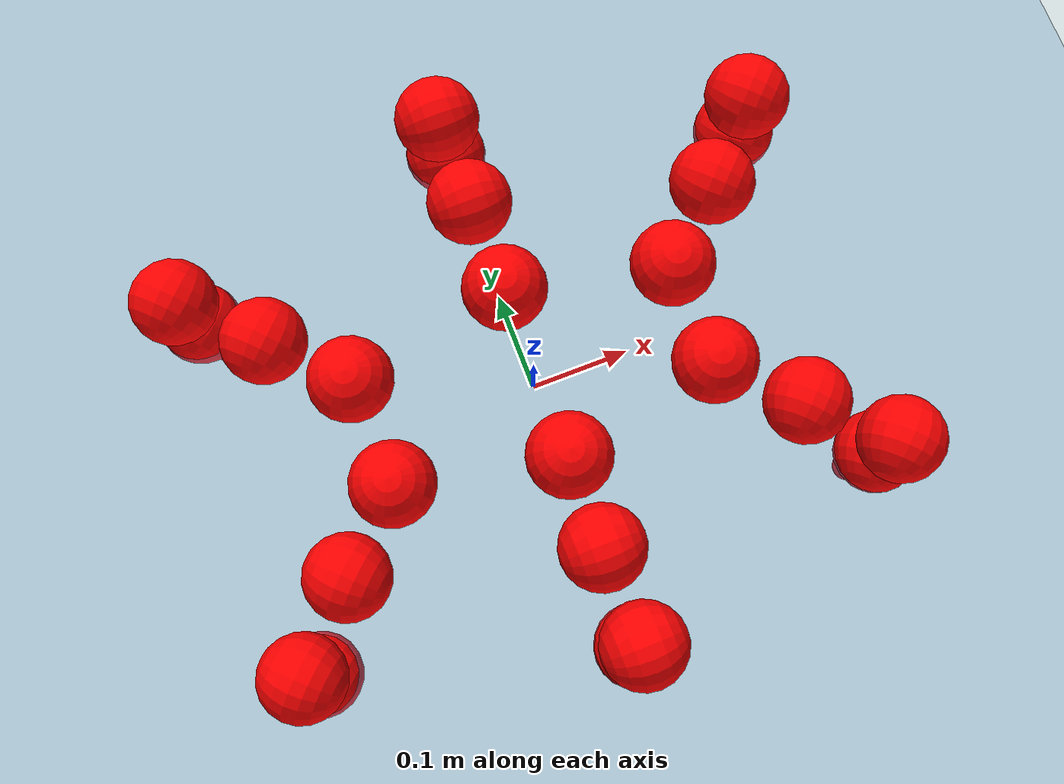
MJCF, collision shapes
<mujoco model="Golem">
  <compiler angle="radian" assetdir="assets" balanceinertia="true" inertiafromgeom="false"/>

  <option timestep="0.005" density="1.2" viscosity="2e-05"/>

  <size nkey="1"/>

  <visual>
    <quality shadowsize="8192"/>
    <map shadowclip="0.5"/>
  </visual>

  <default>
    <default class="/">
      <joint armature="0.01" damping="0.01" frictionloss="0.01"/>
      <geom contype="0" conaffinity="0" group="1" solref="-1000 -80"/>
      <site size="0.01 0.005 0.005" group="5"/>
      <general forcelimited="true" biastype="affine" gainprm="25" biasprm="0 -25 -0.5"/>
      <default class="visual">
        <geom type="mesh" group="2"/>
      </default>
      <default class="collision">
        <geom group="3"/>
      </default>
      <default class="foot">
        <geom size="0.01 0 0" condim="6" group="4" priority="1" solimp="0.015 1 0.01"/>
      </default>
      <default class="reward_collision_sphere">
        <geom group="5" rgba="1 0 0 1"/>
      </default>
    </default>
  </default>

  <asset>
    <texture type="skybox" colorspace="auto" name="//unnamed_texture_0" builtin="gradient" rgb1="0.95 0.95 0.95" rgb2="0.95 0.95 0.95" width="100" height="600"/>
    <texture type="2d" colorspace="auto" name="texplane" builtin="checker" rgb1="0.345 0.575 0.748" rgb2="0.345 0.575 0.748" markrgb="1 1 1" width="512" height="512"/>
    <material name="MatPlane" class="/" texture="texplane" texuniform="true" texrepeat="2 2" specular="0.9"/>
    <mesh name="body" class="/" file="body.stl" scale="0.001 0.001 0.001"/>
    <mesh name="coxa" class="/" file="coxa.stl" scale="0.001 0.001 0.001"/>
    <mesh name="femur" class="/" file="femur.stl" scale="0.001 0.001 0.001"/>
    <mesh name="tibia" class="/" file="tibia.stl" scale="0.001 0.001 0.001"/>
    <mesh name="tarsus" class="/" file="tarsus.stl" scale="0.001 0.001 0.001"/>
  </asset>

  <worldbody>
    <geom name="floor" class="/" size="100 100 0.125" type="plane" group="0" material="MatPlane"/>
    <light name="toplight_shadow" class="/" pos="0 0 5" dir="0.0990148 0.0990148 -0.990148" type="directional" ambient="0.04 0.04 0.04" diffuse="0.55 0.55 0.55" specular="0.12 0.12 0.12"/>
    <light name="toplight_fill" class="/" pos="0 0 5" dir="0.0990148 0.0990148 -0.990148" type="directional" castshadow="false" ambient="0.04 0.04 0.04" diffuse="0.3 0.3 0.3" specular="0.08 0.08 0.08"/>
    <body name="trunk" pos="-0.000289784 -0.000909522 0.000130708" quat="0.999999 0.000546799 7.65414e-05 -0.00105746">
      <inertial pos="-0.00175764 -0.00351538 -0.0039823" quat="0.999964 0.00332868 -0.00592355 0.00498842" mass="4.3621" diaginertia="0.0124075 0.005421 0.0295104"/>
      <joint name="//unnamed_joint_0" type="free"/>
      <geom name="//unnamed_geom_1" class="/" pos="0 0 0.0787032" quat="1 0 0 0" type="mesh" rgba="0.9 0.9 0.9 1" mesh="body"/>
      <site name="imu" class="/" pos="0.138455 -0.00400822 0.112942" size="0.0104788"/>
      <camera name="track" class="/" pos="0 -1.76208 0" quat="0.707107 0.707107 0 0" mode="trackcom"/>
      <camera name="ego_camera" class="/" pos="0.134273 0 0.122974" quat="-0.5 -0.5 0.5 0.5"/>
      <body name="coxa_RR" pos="-0.182918 -0.074354 0.0792975" quat="0.382683 -9.28834e-05 0.000601878 -0.923879">
        <inertial pos="0.00109955 0.00234956 0.0023603" quat="0.999839 -0.0171101 0.00409626 0.00343562" mass="0.21679" diaginertia="0.0115059 0.00536269 0.0265801"/>
        <joint name="coxa_joint_RR" class="/" pos="0 0 0" axis="-0.00614078 -0.00408383 -0.999973" stiffness="0.000959265" range="-3.14533 3.20834" armature="0.00881507" damping="0" frictionloss="0.0107606"/>
        <geom name="//unnamed_geom_2" class="/" type="mesh" rgba="0.2 0.2 0.2 1" mesh="coxa"/>
        <geom name="//unnamed_geom_3" class="reward_collision_sphere" size="0.0419152" pos="-0.030986 0 0"/>
        <body name="femur_RR" pos="0.0632651 -0.00113247 -0.000253345" quat="0.499334 -0.500002 0.500265 0.500398">
          <inertial pos="-0.00184466 0.00228454 0.000883111" quat="0.99997 0.00265825 0.00420147 -0.00590669" mass="0.222316" diaginertia="0.0114543 0.00515642 0.0281739"/>
          <joint name="femur_joint_RR" class="/" pos="0 0 0" axis="0.005432 0.00374967 -0.999978" range="-3.10833 3.1152" armature="0.0105019" damping="0.0369467" frictionloss="0.0117477"/>
          <geom name="//unnamed_geom_4" class="/" type="mesh" rgba="0.9 0.9 0.9 1" mesh="femur"/>
          <geom name="//unnamed_geom_5" class="reward_collision_sphere" size="0.0419152"/>
          <body name="tibia_RR" pos="0.00168195 -0.0975746 0.00179039" quat="0.00040438 1 -0.00037528 0.000769849">
            <inertial pos="-0.000152662 0.00162437 0.000251821" quat="0.99993 -0.0102403 0.00549622 -0.00235414" mass="0.217472" diaginertia="0.0119812 0.00520376 0.0277755"/>
            <joint name="tibia_joint_RR" class="/" pos="0 0 0" axis="0.00226604 -0.00170192 0.999996" range="-3.18918 3.15342" armature="0.0105677" damping="0.0119057" frictionloss="0.0100944"/>
            <geom name="//unnamed_geom_6" class="/" type="mesh" rgba="0.2 0.2 0.2 1" mesh="tibia"/>
            <geom name="//unnamed_geom_7" class="reward_collision_sphere" size="0.0419152"/>
            <body name="tarsus_RR" pos="0.0926044 -0.0001172 -0.00074944" quat="1 -0.000500999 0.000373613 7.79675e-05">
              <inertial pos="0.063701 -0.000446551 -0.00240896" quat="0.502965 0.49661 0.500777 0.499626" mass="0.223868" diaginertia="0.0111349 0.00514222 0.0274103"/>
              <joint name="tarsus_joint_RR" class="/" pos="0 0 0" axis="-0.0170003 0.0118008 0.999786" range="-3.15045 3.14371" armature="0.011261" damping="0.0498038" frictionloss="0.0106615"/>
              <geom name="//unnamed_geom_8" class="/" type="mesh" rgba="0.9 0.9 0.9 1" mesh="tarsus"/>
              <geom name="foot_1" class="foot" size="0.00930788" pos="0.115681 0 0" quat="0 -0.707107 0 0.707107"/>
              <geom name="//unnamed_geom_10" class="reward_collision_sphere" size="0.0419152"/>
              <geom name="//unnamed_geom_11" class="reward_collision_sphere" size="0.0157182" pos="0.111033 0 0"/>
              <site name="foot_1" class="foot" pos="0.115681 0 0" quat="0 -0.707107 0 0.707107" size="0.0104788"/>
            </body>
          </body>
        </body>
      </body>
      <body name="coxa_RM" pos="0.00177012 -0.11798 0.0845046" quat="0.707733 0.000671191 0.000108721 -0.70648">
        <inertial pos="0.00160321 0.000238121 -0.00215403" quat="0.999994 -0.00176489 -0.0017182 -0.00256725" mass="0.223444" diaginertia="0.0111603 0.00531313 0.0272802"/>
        <joint name="coxa_joint_RM" class="/" pos="0 0 0" axis="-0.000704394 0.000566011 -1" stiffness="0.00540834" range="-3.14398 3.15466" armature="0.0106989" damping="0.0206167" frictionloss="0.0108995"/>
        <geom name="//unnamed_geom_12" class="/" type="mesh" rgba="0.2 0.2 0.2 1" mesh="coxa"/>
        <geom name="//unnamed_geom_13" class="reward_collision_sphere" size="0.0419152" pos="-0.030986 0 0"/>
        <body name="femur_RM" pos="0.0591838 -0.00306876 -0.00143984" quat="0.500261 -0.500559 0.499627 0.499552">
          <inertial pos="0.00108403 -0.00178004 0.00249066" quat="0.999893 -0.00430093 -0.0121354 -0.00697771" mass="0.246973" diaginertia="0.0119425 0.00553514 0.0284367"/>
          <joint name="femur_joint_RM" class="/" pos="0 0 0" axis="-0.00166936 -0.00175299 -0.999997" range="-3.0758 3.08582" armature="0.0106616" damping="0.027226" frictionloss="0.0105674"/>
          <geom name="//unnamed_geom_14" class="/" type="mesh" rgba="0.9 0.9 0.9 1" mesh="femur"/>
          <geom name="//unnamed_geom_15" class="reward_collision_sphere" size="0.0419152"/>
          <body name="tibia_RM" pos="0.00138595 -0.0952193 0.00232291" quat="0.000884382 0.999999 -0.000214743 -0.00143809">
            <inertial pos="-0.000618715 0.000970664 -0.00260595" quat="1 3.14096e-05 6.34701e-05 9.09188e-05" mass="0.232107" diaginertia="0.0116474 0.00533871 0.0288742"/>
            <joint name="tibia_joint_RM" class="/" pos="0 0 0" axis="-0.0125044 0.000515381 0.999922" stiffness="0.0139385" range="-3.13848 3.14371" armature="0.00953737" damping="0.00757083" frictionloss="0.00908985"/>
            <geom name="//unnamed_geom_16" class="/" type="mesh" rgba="0.2 0.2 0.2 1" mesh="tibia"/>
            <geom name="//unnamed_geom_17" class="reward_collision_sphere" size="0.0419152"/>
            <body name="tarsus_RM" pos="0.0892025 0.00123449 0.000194355" quat="1 0.0004708 0.000348401 0.000609335">
              <inertial pos="0.0629254 0.000971716 0.000349425" quat="0.510756 0.498323 0.492811 0.497936" mass="0.23151" diaginertia="0.0117345 0.00534376 0.0294513"/>
              <joint name="tarsus_joint_RM" class="/" pos="0 0 0" axis="0.00409773 -0.00075316 0.999991" stiffness="0.00497674" range="-3.1512 3.07261" armature="0.00960497" damping="0.0103142" frictionloss="0.0122196"/>
              <geom name="//unnamed_geom_18" class="/" type="mesh" rgba="0.9 0.9 0.9 1" mesh="tarsus"/>
              <geom name="foot_2" class="foot" size="0.0116172" pos="0.115681 0 0" quat="0 -0.707107 0 0.707107"/>
              <geom name="//unnamed_geom_20" class="reward_collision_sphere" size="0.0419152"/>
              <geom name="//unnamed_geom_21" class="reward_collision_sphere" size="0.0157182" pos="0.111033 0 0"/>
              <site name="foot_2" class="foot" pos="0.115681 0 0" quat="0 -0.707107 0 0.707107" size="0.0104788"/>
            </body>
          </body>
        </body>
      </body>
      <body name="coxa_RF" pos="0.185509 -0.0739911 0.0811392" quat="0.924038 0.000663109 -0.000252731 -0.382299">
        <inertial pos="-0.00187341 -0.00213782 0.000152155" quat="0.999998 0.000666007 0.00190571 0.000538187" mass="0.234613" diaginertia="0.0113137 0.00520208 0.0276868"/>
        <joint name="coxa_joint_RF" class="/" pos="0 0 0" axis="-0.00117705 -0.013931 -0.999902" stiffness="0.0230812" range="-3.09538 3.18218" armature="0.00902975" damping="0.00865533" frictionloss="0.0112989"/>
        <geom name="//unnamed_geom_22" class="/" type="mesh" rgba="0.2 0.2 0.2 1" mesh="coxa"/>
        <geom name="//unnamed_geom_23" class="reward_collision_sphere" size="0.0419152" pos="-0.030986 0 0"/>
        <body name="femur_RF" pos="0.0623781 -0.00099173 0.00047628" quat="0.500322 -0.500154 0.50013 0.499394">
          <inertial pos="0.000483069 -0.00155964 -0.00285578" quat="0.999988 0.00456272 -0.000711877 -0.0014416" mass="0.241028" diaginertia="0.0121386 0.00546974 0.0298585"/>
          <joint name="femur_joint_RF" class="/" pos="0 0 0" axis="-0.0159336 0.000773264 -0.999873" range="-3.16101 3.10593" armature="0.0086189" damping="0.0119771" frictionloss="0.0104693"/>
          <geom name="//unnamed_geom_24" class="/" type="mesh" rgba="0.9 0.9 0.9 1" mesh="femur"/>
          <geom name="//unnamed_geom_25" class="reward_collision_sphere" size="0.0419152"/>
          <body name="tibia_RF" pos="-0.00378416 -0.0931469 0.000643945" quat="0.00050314 1 0.000482859 0.000450992">
            <inertial pos="0.00154094 -0.000245853 0.000774319" quat="0.999999 0.0011669 -0.000217478 -0.000494443" mass="0.224029" diaginertia="0.0120875 0.00527123 0.0269528"/>
            <joint name="tibia_joint_RF" class="/" pos="0 0 0" axis="0.00458153 0.00262003 0.999986" range="-3.14738 3.09571" armature="0.0113716" damping="0.00105214" frictionloss="0.0118593"/>
            <geom name="//unnamed_geom_26" class="/" type="mesh" rgba="0.2 0.2 0.2 1" mesh="tibia"/>
            <geom name="//unnamed_geom_27" class="reward_collision_sphere" size="0.0419152"/>
            <body name="tarsus_RF" pos="0.0876171 -0.00068382 -0.000721332" quat="0.999999 0.00100429 7.71736e-05 -0.00117259">
              <inertial pos="0.0600211 0.000264817 0.000817714" quat="0.497579 0.501323 0.503354 0.49772" mass="0.227074" diaginertia="0.0114463 0.00520564 0.028175"/>
              <joint name="tarsus_joint_RF" class="/" pos="0 0 0" axis="0.0133411 -0.00092875 0.999911" range="-3.14595 3.13098" armature="0.0105362" damping="0.0101858" frictionloss="0.0111287"/>
              <geom name="//unnamed_geom_28" class="/" type="mesh" rgba="0.9 0.9 0.9 1" mesh="tarsus"/>
              <geom name="foot_3" class="foot" size="0.00989377" pos="0.115681 0 0" quat="0 -0.707107 0 0.707107"/>
              <geom name="//unnamed_geom_30" class="reward_collision_sphere" size="0.0419152"/>
              <geom name="//unnamed_geom_31" class="reward_collision_sphere" size="0.0157182" pos="0.111033 0 0"/>
              <site name="foot_3" class="foot" pos="0.115681 0 0" quat="0 -0.707107 0 0.707107" size="0.0104788"/>
            </body>
          </body>
        </body>
      </body>
      <body name="coxa_LR" pos="-0.186651 0.0771836 0.0783737" quat="0.38273 -0.000417616 -0.00059908 0.92386">
        <inertial pos="0.000293456 5.2535e-05 0.00306287" quat="0.999995 -0.00109403 0.00299806 -0.000606158" mass="0.222368" diaginertia="0.0118258 0.00538849 0.0290482"/>
        <joint name="coxa_joint_LR" class="/" pos="0 0 0" axis="-0.00267073 -0.00507603 -0.999984" range="-3.15261 3.13937" armature="0.00936797" damping="0.00975118" frictionloss="0.0100325"/>
        <geom name="//unnamed_geom_32" class="/" type="mesh" rgba="0.2 0.2 0.2 1" mesh="coxa"/>
        <geom name="//unnamed_geom_33" class="reward_collision_sphere" size="0.0419152" pos="-0.030986 0 0"/>
        <body name="femur_LR" pos="0.0599527 3.79749e-05 0.00251149" quat="0.499858 -0.500393 0.500806 0.498942">
          <inertial pos="-0.000674207 -0.00173812 0.0018881" quat="0.999927 -0.00502431 -0.0099873 0.0046098" mass="0.238244" diaginertia="0.0120709 0.00520973 0.0286449"/>
          <joint name="femur_joint_LR" class="/" pos="0 0 0" axis="-0.0011791 0.014371 0.999896" stiffness="0.00298451" range="-3.10724 3.10915" armature="0.0107618" damping="0.0165631" frictionloss="0.00906744"/>
          <geom name="//unnamed_geom_34" class="/" type="mesh" rgba="0.9 0.9 0.9 1" mesh="femur"/>
          <geom name="//unnamed_geom_35" class="reward_collision_sphere" size="0.0419152"/>
          <body name="tibia_LR" pos="0.00135324 -0.0956773 0.000728919" quat="-0.00121298 0.999999 -0.000410632 -0.000282203">
            <inertial pos="0.00325795 -0.00254843 0.00208782" quat="0.999955 0.00892255 0.00278734 0.00138442" mass="0.230246" diaginertia="0.0113577 0.00511126 0.0271631"/>
            <joint name="tibia_joint_LR" class="/" pos="0 0 0" axis="0.000429013 0.00167271 -0.999999" stiffness="0.000537132" range="-3.18024 3.13499" armature="0.00941911" damping="0.0143572" frictionloss="0.00912752"/>
            <geom name="//unnamed_geom_36" class="/" type="mesh" rgba="0.2 0.2 0.2 1" mesh="tibia"/>
            <geom name="//unnamed_geom_37" class="reward_collision_sphere" size="0.0419152"/>
            <body name="tarsus_LR" pos="0.0908224 -0.000936282 0.00268549" quat="1 -0.000136289 -0.000256449 -0.000398032">
              <inertial pos="0.0639996 -0.000990326 0.00270452" quat="0.499678 0.499826 0.500309 0.500187" mass="0.219651" diaginertia="0.0113016 0.00526027 0.0276193"/>
              <joint name="tarsus_joint_LR" class="/" pos="0 0 0" axis="0.00413173 0.00993803 -0.999942" stiffness="0.00537404" range="-3.18108 3.14306" armature="0.00923379" damping="0.0237888" frictionloss="0.010443"/>
              <geom name="//unnamed_geom_38" class="/" type="mesh" rgba="0.9 0.9 0.9 1" mesh="tarsus"/>
              <geom name="foot_4" class="foot" size="0.011624" pos="0.115681 0 0" quat="0.707107 0 -0.707107 0"/>
              <geom name="//unnamed_geom_40" class="reward_collision_sphere" size="0.0419152"/>
              <geom name="//unnamed_geom_41" class="reward_collision_sphere" size="0.0157182" pos="0.111033 0 0"/>
              <site name="foot_4" class="foot" pos="0.115681 0 0" quat="0.707107 0 -0.707107 0" size="0.0104788"/>
            </body>
          </body>
        </body>
      </body>
      <body name="coxa_LM" pos="0.00286704 0.117106 0.0811333" quat="0.707295 0.000844638 0.000902827 0.706918">
        <inertial pos="-0.00187376 -0.00297963 0.00289425" quat="0.999999 -0.000614605 -0.000525078 0.000772345" mass="0.22958" diaginertia="0.0121558 0.00532473 0.0281053"/>
        <joint name="coxa_joint_LM" class="/" pos="0 0 0" axis="-0.012044 -0.00918456 -0.999885" stiffness="0.00135126" range="-3.11508 3.11374" armature="0.0100096" damping="0.0274394" frictionloss="0.0112005"/>
        <geom name="//unnamed_geom_42" class="/" type="mesh" rgba="0.2 0.2 0.2 1" mesh="coxa"/>
        <geom name="//unnamed_geom_43" class="reward_collision_sphere" size="0.0419152" pos="-0.030986 0 0"/>
        <body name="femur_LM" pos="0.0628327 0.000962219 -0.00161772" quat="0.499822 -0.500984 0.500008 0.499184">
          <inertial pos="-0.000740783 0.001254 -0.00239403" quat="1 0.000571654 0.000586972 -0.000287151" mass="0.237124" diaginertia="0.0121283 0.00543662 0.0300121"/>
          <joint name="femur_joint_LM" class="/" pos="0 0 0" axis="0.00665397 -0.0130415 0.999893" stiffness="0.00136726" range="-3.09001 3.13472" armature="0.0120879" damping="0.0104881" frictionloss="0.0108203"/>
          <geom name="//unnamed_geom_44" class="/" type="mesh" rgba="0.9 0.9 0.9 1" mesh="femur"/>
          <geom name="//unnamed_geom_45" class="reward_collision_sphere" size="0.0419152"/>
          <body name="tibia_LM" pos="-0.00130837 -0.0913358 -7.05059e-05" quat="0.000112149 1 -0.000157586 -6.98134e-05">
            <inertial pos="0.00275808 -0.00130758 0.00205907" quat="0.999914 -0.0062544 0.00124661 0.0114957" mass="0.236748" diaginertia="0.0117266 0.0051804 0.026799"/>
            <joint name="tibia_joint_LM" class="/" pos="0 0 0" axis="0.00552036 -0.00353424 -0.999979" range="-3.19105 3.14299" armature="0.0104471" damping="0.0129163" frictionloss="0.00983835"/>
            <geom name="//unnamed_geom_46" class="/" type="mesh" rgba="0.2 0.2 0.2 1" mesh="tibia"/>
            <geom name="//unnamed_geom_47" class="reward_collision_sphere" size="0.0419152"/>
            <body name="tarsus_LM" pos="0.0908158 -0.000286145 0.00258567" quat="1 -4.93065e-05 -3.22391e-06 -0.000299894">
              <inertial pos="0.0587346 -0.000269122 -0.00047538" quat="0.497465 0.502941 0.494373 0.505148" mass="0.217332" diaginertia="0.011844 0.00530002 0.0280293"/>
              <joint name="tarsus_joint_LM" class="/" pos="0 0 0" axis="0.00882567 -0.00716897 -0.999935" range="-3.14668 3.12638" armature="0.0108408" damping="0" frictionloss="0.0104861"/>
              <geom name="//unnamed_geom_48" class="/" type="mesh" rgba="0.9 0.9 0.9 1" mesh="tarsus"/>
              <geom name="foot_5" class="foot" size="0.0116545" pos="0.115681 0 0" quat="0.707107 0 -0.707107 0"/>
              <geom name="//unnamed_geom_50" class="reward_collision_sphere" size="0.0419152"/>
              <geom name="//unnamed_geom_51" class="reward_collision_sphere" size="0.0157182" pos="0.111033 0 0"/>
              <site name="foot_5" class="foot" pos="0.115681 0 0" quat="0.707107 0 -0.707107 0" size="0.0104788"/>
            </body>
          </body>
        </body>
      </body>
      <body name="coxa_LF" pos="0.184886 0.0730239 0.0793003" quat="0.923841 -0.000310063 4.02779e-05 0.382777">
        <inertial pos="-0.000372985 0.00271473 0.000501654" quat="1 3.40927e-05 -0.000230423 -9.48766e-05" mass="0.22831" diaginertia="0.0114705 0.00516559 0.0275794"/>
        <joint name="coxa_joint_LF" class="/" pos="0 0 0" axis="0.00435285 -0.0122679 -0.999915" range="-3.12046 3.09441" armature="0.0117375" damping="0.00883245" frictionloss="0.0102409"/>
        <geom name="//unnamed_geom_52" class="/" type="mesh" rgba="0.2 0.2 0.2 1" mesh="coxa"/>
        <geom name="//unnamed_geom_53" class="reward_collision_sphere" size="0.0419152" pos="-0.030986 0 0"/>
        <body name="femur_LF" pos="0.0599944 -0.00319999 0.00338368" quat="0.499876 -0.498999 0.499974 0.501149">
          <inertial pos="0.000979131 0.00203083 -0.00272764" quat="0.999998 0.0018767 0.000744606 -1.2331e-05" mass="0.226421" diaginertia="0.01144 0.00521504 0.0284381"/>
          <joint name="femur_joint_LF" class="/" pos="0 0 0" axis="-0.00228275 0.00261557 0.999994" stiffness="0.00293309" range="-3.13426 3.17275" armature="0.0107347" damping="0.00953413" frictionloss="0.0117879"/>
          <geom name="//unnamed_geom_54" class="/" type="mesh" rgba="0.9 0.9 0.9 1" mesh="femur"/>
          <geom name="//unnamed_geom_55" class="reward_collision_sphere" size="0.0419152"/>
          <body name="tibia_LF" pos="0.00221777 -0.0971849 0.00237486" quat="-0.00018755 0.999999 -0.000656397 -0.00110733">
            <inertial pos="0.00271671 0.00217237 0.00200496" quat="0.999959 0.00593246 0.00618826 0.00278932" mass="0.233794" diaginertia="0.0117842 0.00542619 0.0293222"/>
            <joint name="tibia_joint_LF" class="/" pos="0 0 0" axis="0.00147817 -0.000652795 -0.999999" range="-3.15503 3.10484" armature="0.0123502" damping="0.0216744" frictionloss="0.0103526"/>
            <geom name="//unnamed_geom_56" class="/" type="mesh" rgba="0.2 0.2 0.2 1" mesh="tibia"/>
            <geom name="//unnamed_geom_57" class="reward_collision_sphere" size="0.0419152"/>
            <body name="tarsus_LF" pos="0.0885737 0.00193993 -0.000121597" quat="0.999999 0.00160009 0.000329223 -0.000447608">
              <inertial pos="0.0617098 0.00153813 0.000588769" quat="0.500247 0.500169 0.499618 0.499966" mass="0.231619" diaginertia="0.0113835 0.00531912 0.0274068"/>
              <joint name="tarsus_joint_LF" class="/" pos="0 0 0" axis="-0.000996141 -0.0067524 -0.999977" range="-3.16086 3.16768" armature="0.0111834" damping="0" frictionloss="0.0108017"/>
              <geom name="//unnamed_geom_58" class="/" type="mesh" rgba="0.9 0.9 0.9 1" mesh="tarsus"/>
              <geom name="foot_6" class="foot" size="0.0106318" pos="0.115681 0 0" quat="0.707107 0 -0.707107 0"/>
              <geom name="//unnamed_geom_60" class="reward_collision_sphere" size="0.0419152"/>
              <geom name="//unnamed_geom_61" class="reward_collision_sphere" size="0.0157182" pos="0.111033 0 0"/>
              <site name="foot_6" class="foot" pos="0.115681 0 0" quat="0.707107 0 -0.707107 0" size="0.0104788"/>
            </body>
          </body>
        </body>
      </body>
    </body>
  </worldbody>

  <contact>
    <pair class="/" geom1="floor" geom2="foot_1" name="//unnamed_contact_0"/>
    <pair class="/" geom1="floor" geom2="foot_2" name="//unnamed_contact_1"/>
    <pair class="/" geom1="floor" geom2="foot_3" name="//unnamed_contact_2"/>
    <pair class="/" geom1="floor" geom2="foot_4" name="//unnamed_contact_3"/>
    <pair class="/" geom1="floor" geom2="foot_5" name="//unnamed_contact_4"/>
    <pair class="/" geom1="floor" geom2="foot_6" name="//unnamed_contact_5"/>
  </contact>

  <actuator>
    <general name="coxa_joint_RR" class="/" joint="coxa_joint_RR" forcerange="-7.95921 7.95921" gainprm="25.9225" biasprm="0 -25.9225 -0.508116"/>
    <general name="femur_joint_RR" class="/" joint="femur_joint_RR" forcerange="-7.71961 7.71961" gainprm="25.9225" biasprm="0 -25.9225 -0.508116"/>
    <general name="tibia_joint_RR" class="/" joint="tibia_joint_RR" forcerange="-7.61761 7.61761" gainprm="25.9225" biasprm="0 -25.9225 -0.508116"/>
    <general name="tarsus_joint_RR" class="/" joint="tarsus_joint_RR" forcerange="-6.88535 6.88535" gainprm="25.9225" biasprm="0 -25.9225 -0.508116"/>
    <general name="coxa_joint_RM" class="/" joint="coxa_joint_RM" forcerange="-6.87495 6.87495" gainprm="25.9225" biasprm="0 -25.9225 -0.508116"/>
    <general name="femur_joint_RM" class="/" joint="femur_joint_RM" forcerange="-7.70823 7.70823" gainprm="25.9225" biasprm="0 -25.9225 -0.508116"/>
    <general name="tibia_joint_RM" class="/" joint="tibia_joint_RM" forcerange="-7.69545 7.69545" gainprm="25.9225" biasprm="0 -25.9225 -0.508116"/>
    <general name="tarsus_joint_RM" class="/" joint="tarsus_joint_RM" forcerange="-8.40115 8.40115" gainprm="25.9225" biasprm="0 -25.9225 -0.508116"/>
    <general name="coxa_joint_RF" class="/" joint="coxa_joint_RF" forcerange="-7.83475 7.83475" gainprm="25.9225" biasprm="0 -25.9225 -0.508116"/>
    <general name="femur_joint_RF" class="/" joint="femur_joint_RF" forcerange="-7.60504 7.60504" gainprm="25.9225" biasprm="0 -25.9225 -0.508116"/>
    <general name="tibia_joint_RF" class="/" joint="tibia_joint_RF" forcerange="-7.78442 7.78442" gainprm="25.9225" biasprm="0 -25.9225 -0.508116"/>
    <general name="tarsus_joint_RF" class="/" joint="tarsus_joint_RF" forcerange="-8.31877 8.31877" gainprm="25.9225" biasprm="0 -25.9225 -0.508116"/>
    <general name="coxa_joint_LR" class="/" joint="coxa_joint_LR" forcerange="-7.26303 7.26303" gainprm="25.9225" biasprm="0 -25.9225 -0.508116"/>
    <general name="femur_joint_LR" class="/" joint="femur_joint_LR" forcerange="-7.14797 7.14797" gainprm="25.9225" biasprm="0 -25.9225 -0.508116"/>
    <general name="tibia_joint_LR" class="/" joint="tibia_joint_LR" forcerange="-8.28743 8.28743" gainprm="25.9225" biasprm="0 -25.9225 -0.508116"/>
    <general name="tarsus_joint_LR" class="/" joint="tarsus_joint_LR" forcerange="-6.82909 6.82909" gainprm="25.9225" biasprm="0 -25.9225 -0.508116"/>
    <general name="coxa_joint_LM" class="/" joint="coxa_joint_LM" forcerange="-8.21248 8.21248" gainprm="25.9225" biasprm="0 -25.9225 -0.508116"/>
    <general name="femur_joint_LM" class="/" joint="femur_joint_LM" forcerange="-7.40713 7.40713" gainprm="25.9225" biasprm="0 -25.9225 -0.508116"/>
    <general name="tibia_joint_LM" class="/" joint="tibia_joint_LM" forcerange="-7.58859 7.58859" gainprm="25.9225" biasprm="0 -25.9225 -0.508116"/>
    <general name="tarsus_joint_LM" class="/" joint="tarsus_joint_LM" forcerange="-6.94168 6.94168" gainprm="25.9225" biasprm="0 -25.9225 -0.508116"/>
    <general name="coxa_joint_LF" class="/" joint="coxa_joint_LF" forcerange="-7.6738 7.6738" gainprm="25.9225" biasprm="0 -25.9225 -0.508116"/>
    <general name="femur_joint_LF" class="/" joint="femur_joint_LF" forcerange="-7.68995 7.68995" gainprm="25.9225" biasprm="0 -25.9225 -0.508116"/>
    <general name="tibia_joint_LF" class="/" joint="tibia_joint_LF" forcerange="-8.40057 8.40057" gainprm="25.9225" biasprm="0 -25.9225 -0.508116"/>
    <general name="tarsus_joint_LF" class="/" joint="tarsus_joint_LF" forcerange="-7.34517 7.34517" gainprm="25.9225" biasprm="0 -25.9225 -0.508116"/>
  </actuator>

  <sensor>
    <gyro site="imu" name="imu_angular_velocity"/>
    <velocimeter site="imu" name="imu_linear_velocity"/>
    <framelinvel objtype="site" objname="foot_1" name="foot_1_global_linear_velocity"/>
    <framelinvel objtype="site" objname="foot_2" name="foot_2_global_linear_velocity"/>
    <framelinvel objtype="site" objname="foot_3" name="foot_3_global_linear_velocity"/>
    <framelinvel objtype="site" objname="foot_4" name="foot_4_global_linear_velocity"/>
    <framelinvel objtype="site" objname="foot_5" name="foot_5_global_linear_velocity"/>
    <framelinvel objtype="site" objname="foot_6" name="foot_6_global_linear_velocity"/>
  </sensor>

  <keyframe>
    <key name="home" qpos="0 0 0.1457 1 0 0 0 0 0 0 0 0 0 0 0 0 0 0 0 0 0 0 0 0 0 0 0 0 0 0 0"/>
  </keyframe>
</mujoco>
